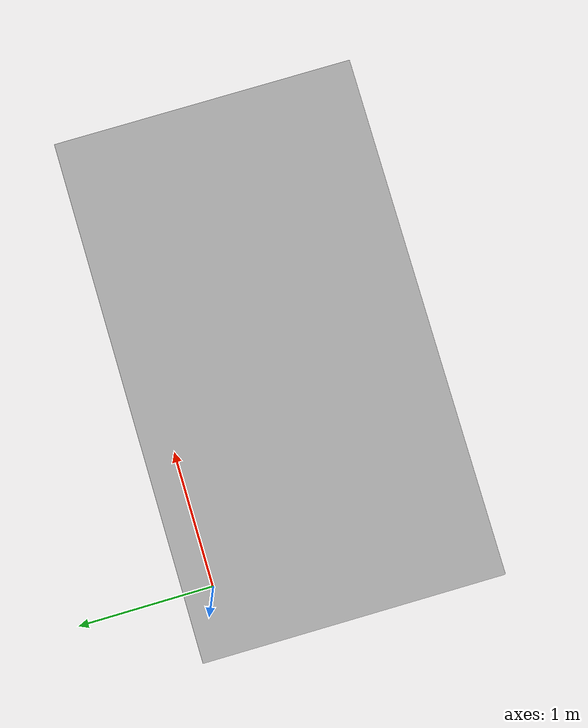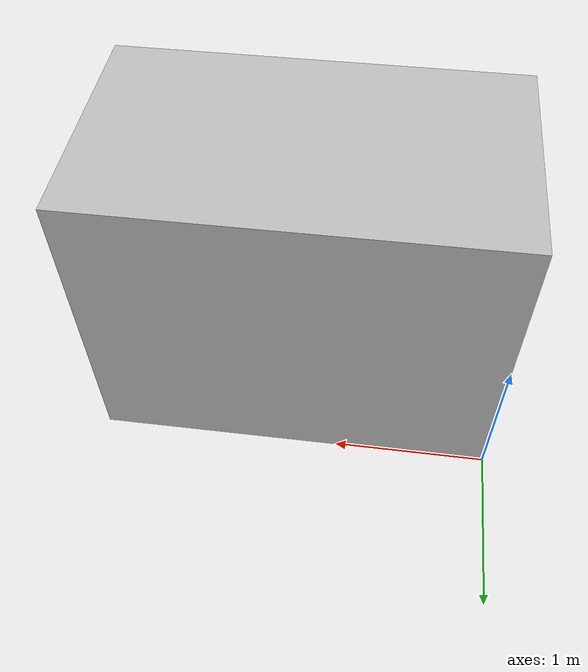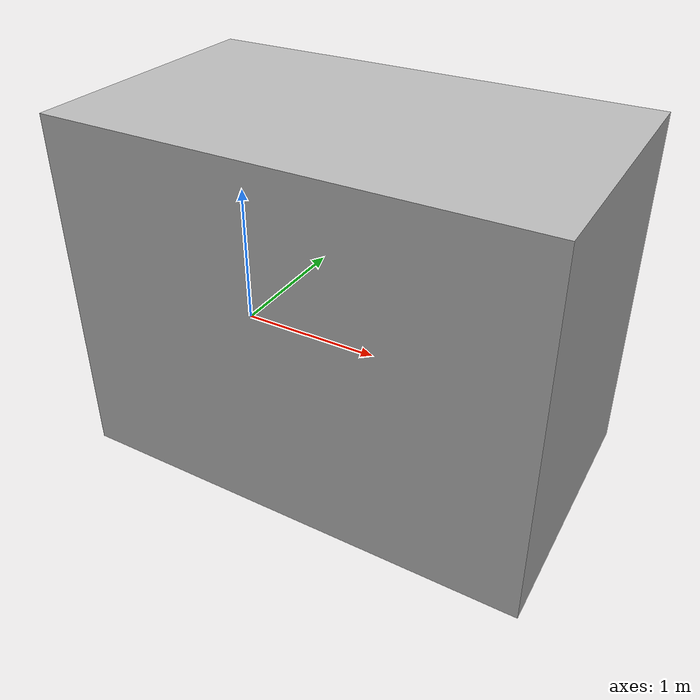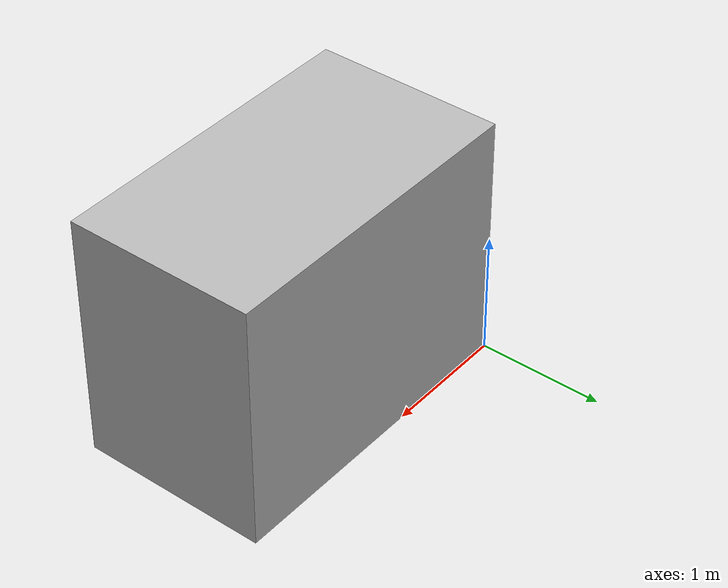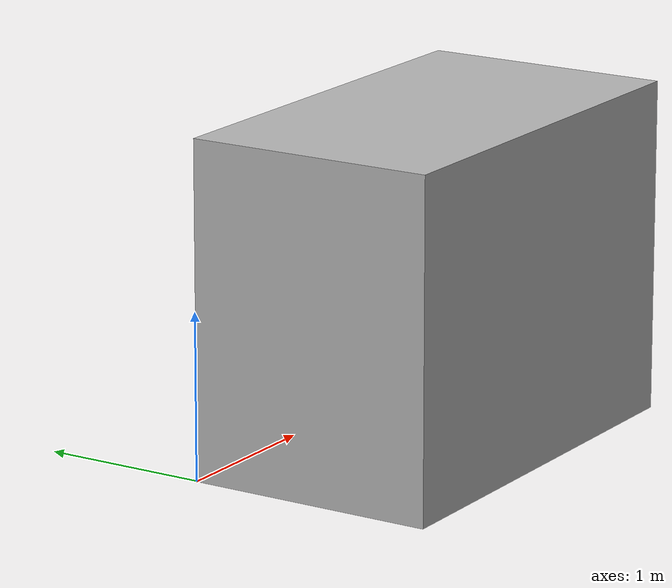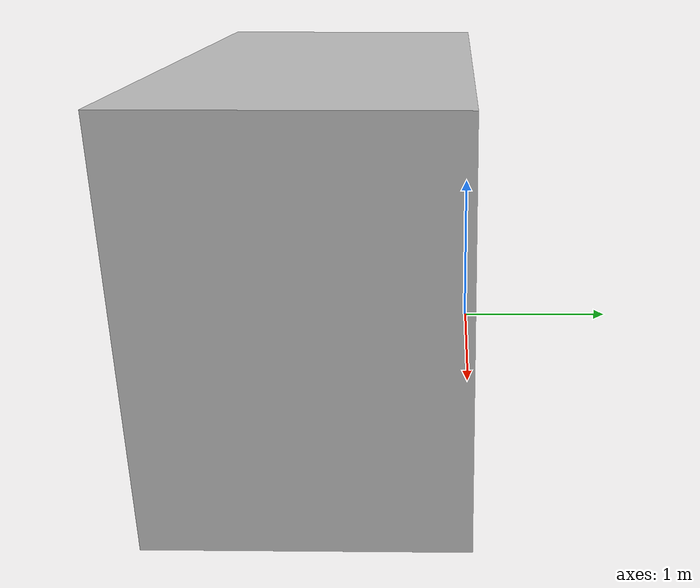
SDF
<?xml version="1.0"?>
<sdf version="1.6">
  <model name="obstacle_09">
    <static>true</static>

    <link name="link_09">
      <pose frame=''>1.30 -0.75 1.00 0 -0 0</pose>
      <collision name="body_collision">
        <geometry>
          <box>
            <size>2.60 1.50 2.00</size>
          </box>
        </geometry>
      </collision>

      <visual name="visual_05">
	<pose frame=''>0 0 0 0 -0 0</pose>
        <geometry>
          <box>
            <size>2.60 1.50 2.00</size>
          </box>
	</geometry>

	    <material>
		<script>
			<uri>model://obstacle_09/materials/scripts</uri>
			<uri>model://obstacle_09/materials/textures</uri>
			<name>repeated_09</name>
		</script>
	    </material>

      </visual>

    </link>

  </model>
</sdf>
